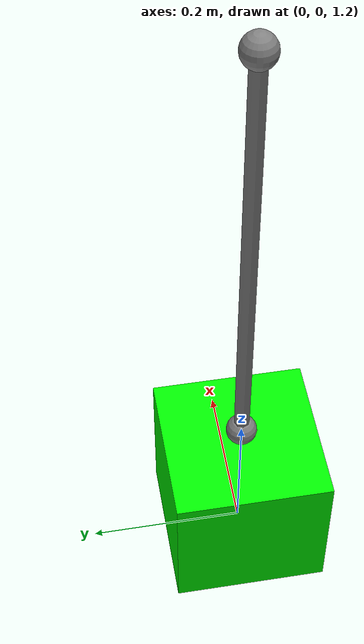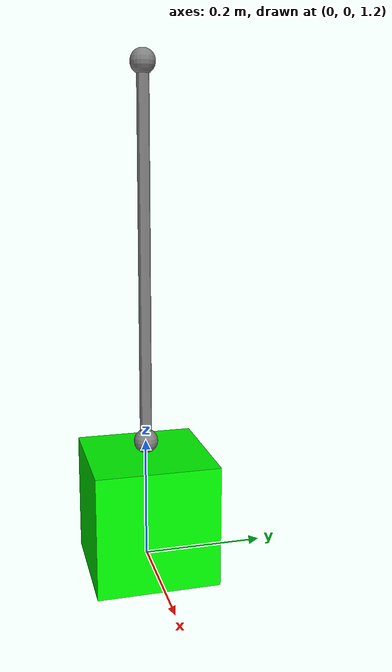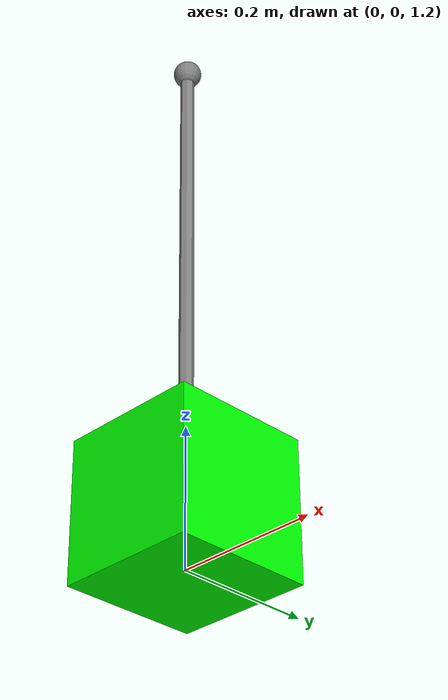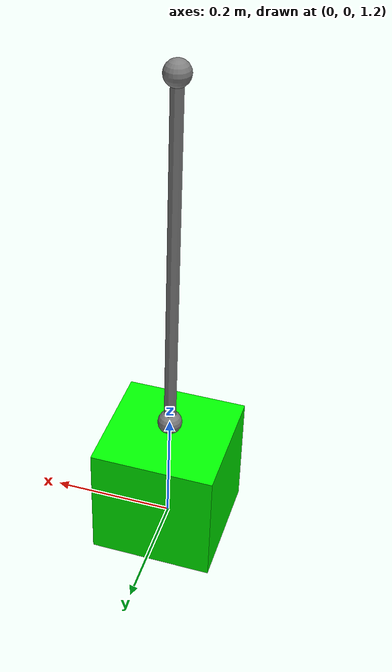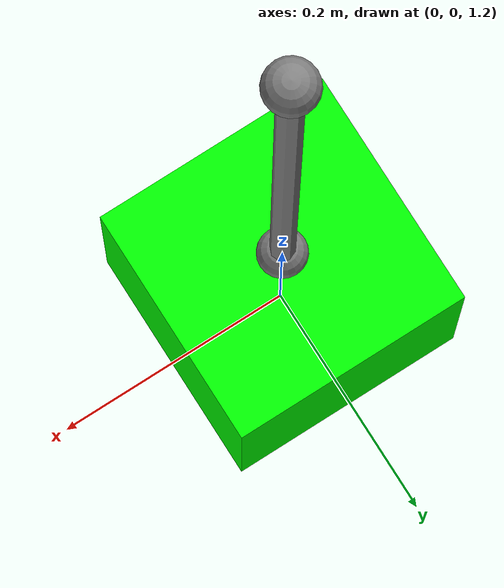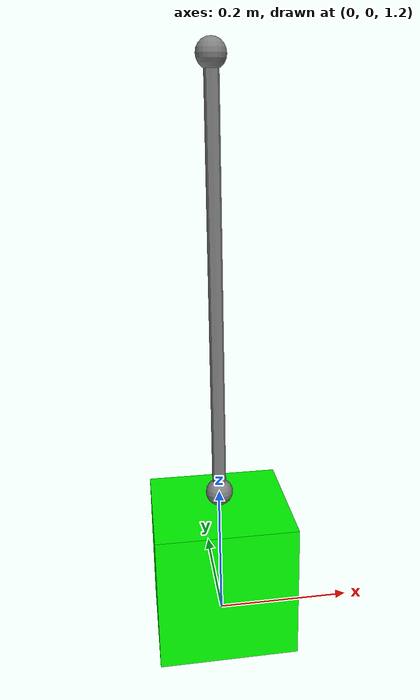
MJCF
<mujoco>
    <option timestep="0.00001">
		<flag gravity="enable"/>
    </option>

    <worldbody>
        <light diffuse=".5 .5 .5" pos="0 0 3" dir="0 0 -1"/>
        <geom type="plane" size="1 1 0.1" rgba=".9 0 0 1" pos="0 0 -0.4"/>
        <site name="s0" pos="0 0 2" size="0.02"/>
        <body pos="0 0 1.28" euler="0 0 0">
            <joint name="mSlide" type="slide" axis="0 0 1" pos="0 0 3" range="-2 2" damping="20"/>
            <geom  type="box" size="0.1 0.1 0.1" rgba="0 1 0 1" mass="1"/>
            <site name="s1" pos="0 0 0.12" size="0.02"/>
        </body>
    </worldbody>

    <tendon>
        <spatial name="mTendon" width="0.01">
            <site site="s0"/>
            <site site="s1"/>
        </spatial>
    </tendon>

    <actuator>
        <position name="mPos" joint="mSlide" kp="50" ctrlrange="-4 4"/>
        <muscle name="mMuscle" tendon="mTendon" lengthrange="0 2" ctrlrange="-2 2"/>
    </actuator>
</mujoco>
